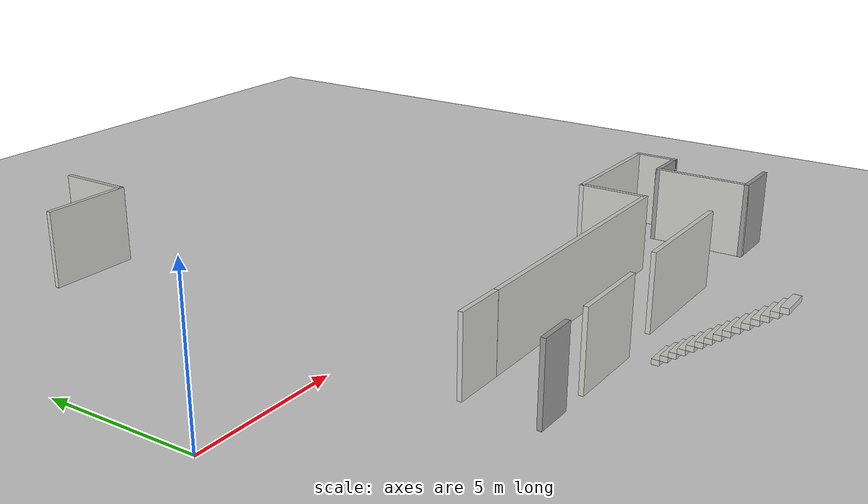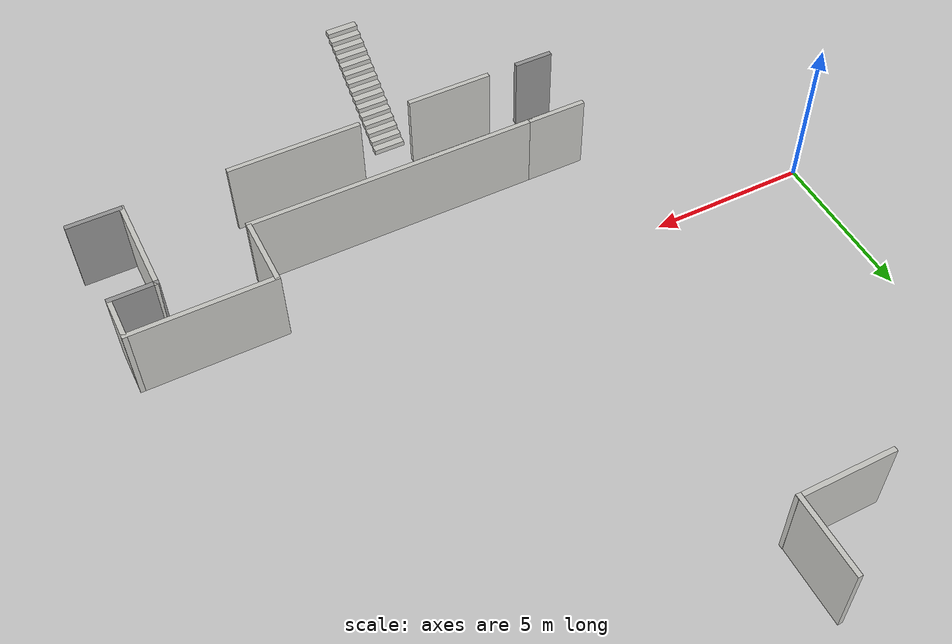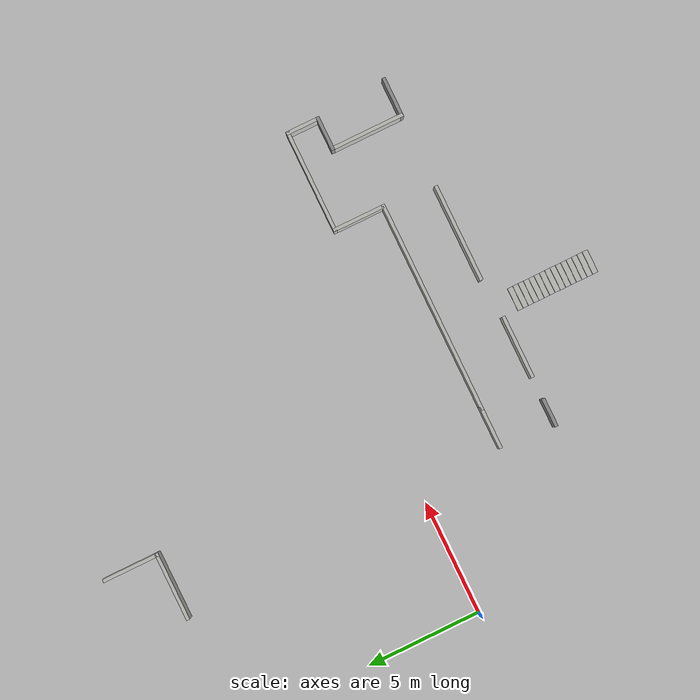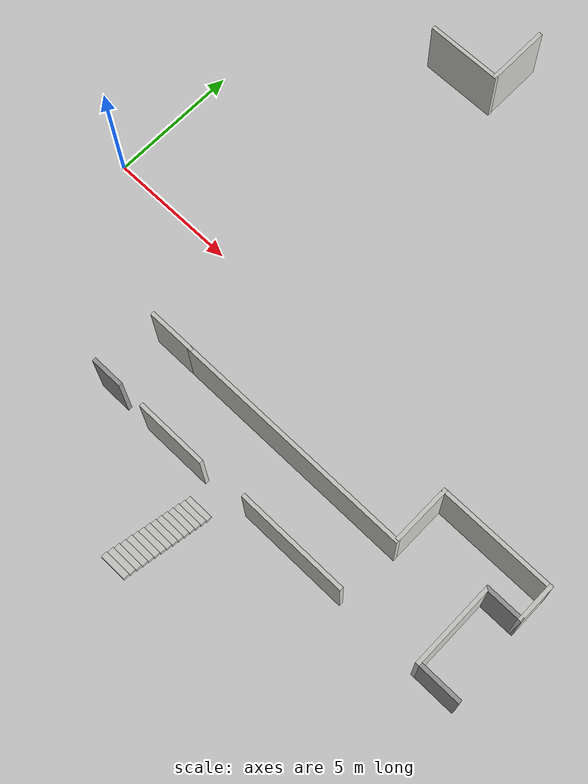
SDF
<sdf version="1.7">
 <world name="default">
  <model name="ground_plane">
   <static>1</static>
   <link name="link">
    <collision name="collision">
     <geometry><plane><normal>0 0 1</normal><size>100 100</size></plane></geometry>
     <surface>
      <contact><collide_bitmask>65535</collide_bitmask></contact>
      <friction><ode><mu>100</mu><mu2>50</mu2></ode></friction>
     </surface>
    </collision>
    <visual name="visual">
     <cast_shadows>0</cast_shadows>
     <geometry><plane><normal>0 0 1</normal><size>100 100</size></plane></geometry>
     <material>
      <script><uri>file://media/materials/scripts/gazebo.material</uri><name>Gazebo/Grey</name></script>
     </material>
    </visual>
   </link>
  </model>
  <model name="map_depo">
   <link name="Stairs_0">
    <visual name="Stairs_0_Visual_9">
     <pose>1.22447 -8.88721 1.58333 0 -0 0</pose>
     <geometry><box><size>1 0.233333 0.166667</size></box></geometry>
     <material>
      <script><uri>file://media/materials/scripts/gazebo.material</uri><name>Gazebo/CeilingTiled</name></script>
      <ambient>1 1 1 1</ambient>
      <shader type="pixel"/>
     </material>
     <meta><layer>0</layer></meta>
    </visual>
    <visual name="Stairs_0_Visual_12">
     <pose>1.22447 -9.58721 2.08333 0 -0 0</pose>
     <geometry><box><size>1 0.233333 0.166667</size></box></geometry>
     <material>
      <script><uri>file://media/materials/scripts/gazebo.material</uri><name>Gazebo/CeilingTiled</name></script>
      <ambient>1 1 1 1</ambient>
      <shader type="pixel"/>
     </material>
     <meta><layer>0</layer></meta>
    </visual>
    <visual name="Stairs_0_Visual_4">
     <pose>1.22447 -7.72054 0.75 0 -0 0</pose>
     <geometry><box><size>1 0.233333 0.166667</size></box></geometry>
     <material>
      <script><uri>file://media/materials/scripts/gazebo.material</uri><name>Gazebo/CeilingTiled</name></script>
      <ambient>1 1 1 1</ambient>
      <shader type="pixel"/>
     </material>
     <meta><layer>0</layer></meta>
    </visual>
    <visual name="Stairs_0_Visual_7">
     <pose>1.22447 -8.42054 1.25 0 -0 0</pose>
     <geometry><box><size>1 0.233333 0.166667</size></box></geometry>
     <material>
      <script><uri>file://media/materials/scripts/gazebo.material</uri><name>Gazebo/CeilingTiled</name></script>
      <ambient>1 1 1 1</ambient>
      <shader type="pixel"/>
     </material>
     <meta><layer>0</layer></meta>
    </visual>
    <visual name="Stairs_0_Visual_14">
     <pose>1.22447 -10.0539 2.41667 0 -0 0</pose>
     <geometry><box><size>1 0.233333 0.166667</size></box></geometry>
     <material>
      <script><uri>file://media/materials/scripts/gazebo.material</uri><name>Gazebo/CeilingTiled</name></script>
      <ambient>1 1 1 1</ambient>
      <shader type="pixel"/>
     </material>
     <meta><layer>0</layer></meta>
    </visual>
    <visual name="Stairs_0_Visual_0">
     <pose>1.22447 -6.78721 0.083333 0 -0 0</pose>
     <geometry><box><size>1 0.233333 0.166667</size></box></geometry>
     <material>
      <script><uri>file://media/materials/scripts/gazebo.material</uri><name>Gazebo/CeilingTiled</name></script>
      <ambient>1 1 1 1</ambient>
      <shader type="pixel"/>
     </material>
     <meta><layer>0</layer></meta>
    </visual>
    <visual name="Stairs_0_Visual_10">
     <pose>1.22447 -9.12054 1.75 0 -0 0</pose>
     <geometry><box><size>1 0.233333 0.166667</size></box></geometry>
     <material>
      <script><uri>file://media/materials/scripts/gazebo.material</uri><name>Gazebo/CeilingTiled</name></script>
      <ambient>1 1 1 1</ambient>
      <shader type="pixel"/>
     </material>
     <meta><layer>0</layer></meta>
    </visual>
    <visual name="Stairs_0_Visual_6">
     <pose>1.22447 -8.18721 1.08333 0 -0 0</pose>
     <geometry><box><size>1 0.233333 0.166667</size></box></geometry>
     <material>
      <script><uri>file://media/materials/scripts/gazebo.material</uri><name>Gazebo/CeilingTiled</name></script>
      <ambient>1 1 1 1</ambient>
      <shader type="pixel"/>
     </material>
     <meta><layer>0</layer></meta>
    </visual>
    <visual name="Stairs_0_Visual_5">
     <pose>1.22447 -7.95388 0.916667 0 -0 0</pose>
     <geometry><box><size>1 0.233333 0.166667</size></box></geometry>
     <material>
      <script><uri>file://media/materials/scripts/gazebo.material</uri><name>Gazebo/CeilingTiled</name></script>
      <ambient>1 1 1 1</ambient>
      <shader type="pixel"/>
     </material>
     <meta><layer>0</layer></meta>
    </visual>
    <visual name="Stairs_0_Visual_2">
     <pose>1.22447 -7.25387 0.416667 0 -0 0</pose>
     <geometry><box><size>1 0.233333 0.166667</size></box></geometry>
     <material>
      <script><uri>file://media/materials/scripts/gazebo.material</uri><name>Gazebo/CeilingTiled</name></script>
      <ambient>1 1 1 1</ambient>
      <shader type="pixel"/>
     </material>
     <meta><layer>0</layer></meta>
    </visual>
    <visual name="Stairs_0_Visual_8">
     <pose>1.22447 -8.65388 1.41667 0 -0 0</pose>
     <geometry><box><size>1 0.233333 0.166667</size></box></geometry>
     <material>
      <script><uri>file://media/materials/scripts/gazebo.material</uri><name>Gazebo/CeilingTiled</name></script>
      <ambient>1 1 1 1</ambient>
      <shader type="pixel"/>
     </material>
     <meta><layer>0</layer></meta>
    </visual>
    <visual name="Stairs_0_Visual_13">
     <pose>1.22447 -9.82054 2.25 0 -0 0</pose>
     <geometry><box><size>1 0.233333 0.166667</size></box></geometry>
     <material>
      <script><uri>file://media/materials/scripts/gazebo.material</uri><name>Gazebo/CeilingTiled</name></script>
      <ambient>1 1 1 1</ambient>
      <shader type="pixel"/>
     </material>
     <meta><layer>0</layer></meta>
    </visual>
    <visual name="Stairs_0_Visual_1">
     <pose>1.22447 -7.02054 0.25 0 -0 0</pose>
     <geometry><box><size>1 0.233333 0.166667</size></box></geometry>
     <material>
      <script><uri>file://media/materials/scripts/gazebo.material</uri><name>Gazebo/CeilingTiled</name></script>
      <ambient>1 1 1 1</ambient>
      <shader type="pixel"/>
     </material>
     <meta><layer>0</layer></meta>
    </visual>
    <visual name="Stairs_0_Visual_11">
     <pose>1.22447 -9.35388 1.91667 0 -0 0</pose>
     <geometry><box><size>1 0.233333 0.166667</size></box></geometry>
     <material>
      <script><uri>file://media/materials/scripts/gazebo.material</uri><name>Gazebo/CeilingTiled</name></script>
      <ambient>1 1 1 1</ambient>
      <shader type="pixel"/>
     </material>
     <meta><layer>0</layer></meta>
    </visual>
    <visual name="Stairs_0_Visual_3">
     <pose>1.22447 -7.48721 0.583333 0 -0 0</pose>
     <geometry><box><size>1 0.233333 0.166667</size></box></geometry>
     <material>
      <script><uri>file://media/materials/scripts/gazebo.material</uri><name>Gazebo/CeilingTiled</name></script>
      <ambient>1 1 1 1</ambient>
      <shader type="pixel"/>
     </material>
     <meta><layer>0</layer></meta>
    </visual>
    <collision name="Stairs_0_Collision_11">
     <pose>1.22447 -9.35388 1.91667 0 -0 0</pose>
     <geometry><box><size>1 0.233333 0.166667</size></box></geometry>
     <surface>
      <friction>
       <ode><mu>1</mu><mu2>1</mu2><fdir1>0 0 0</fdir1><slip1>0</slip1><slip2>0</slip2></ode>
       <torsional>
        <coefficient>1</coefficient>
        <patch_radius>0</patch_radius>
        <surface_radius>0</surface_radius>
        <use_patch_radius>1</use_patch_radius>
        <ode><slip>0</slip></ode>
       </torsional>
      </friction>
      <bounce><restitution_coefficient>0</restitution_coefficient><threshold>1e+06</threshold></bounce>
      <contact>
       <collide_without_contact>0</collide_without_contact>
       <collide_without_contact_bitmask>1</collide_without_contact_bitmask>
       <collide_bitmask>1</collide_bitmask>
       <ode>
        <soft_cfm>0</soft_cfm>
        <soft_erp>0.2</soft_erp>
        <kp>1e+13</kp>
        <kd>1</kd>
        <max_vel>0.01</max_vel>
        <min_depth>0</min_depth>
       </ode>
       <bullet>
        <split_impulse>1</split_impulse>
        <split_impulse_penetration_threshold>-0.01</split_impulse_penetration_threshold>
        <soft_cfm>0</soft_cfm>
        <soft_erp>0.2</soft_erp>
        <kp>1e+13</kp>
        <kd>1</kd>
       </bullet>
      </contact>
     </surface>
    </collision>
    <collision name="Stairs_0_Collision_0">
     <pose>1.22447 -6.78721 0.083333 0 -0 0</pose>
     <geometry><box><size>1 0.233333 0.166667</size></box></geometry>
     <surface>
      <friction>
       <ode><mu>1</mu><mu2>1</mu2><fdir1>0 0 0</fdir1><slip1>0</slip1><slip2>0</slip2></ode>
       <torsional>
        <coefficient>1</coefficient>
        <patch_radius>0</patch_radius>
        <surface_radius>0</surface_radius>
        <use_patch_radius>1</use_patch_radius>
        <ode><slip>0</slip></ode>
       </torsional>
      </friction>
      <bounce><restitution_coefficient>0</restitution_coefficient><threshold>1e+06</threshold></bounce>
      <contact>
       <collide_without_contact>0</collide_without_contact>
       <collide_without_contact_bitmask>1</collide_without_contact_bitmask>
       <collide_bitmask>1</collide_bitmask>
       <ode>
        <soft_cfm>0</soft_cfm>
        <soft_erp>0.2</soft_erp>
        <kp>1e+13</kp>
        <kd>1</kd>
        <max_vel>0.01</max_vel>
        <min_depth>0</min_depth>
       </ode>
       <bullet>
        <split_impulse>1</split_impulse>
        <split_impulse_penetration_threshold>-0.01</split_impulse_penetration_threshold>
        <soft_cfm>0</soft_cfm>
        <soft_erp>0.2</soft_erp>
        <kp>1e+13</kp>
        <kd>1</kd>
       </bullet>
      </contact>
     </surface>
    </collision>
    <collision name="Stairs_0_Collision_3">
     <pose>1.22447 -7.48721 0.583333 0 -0 0</pose>
     <geometry><box><size>1 0.233333 0.166667</size></box></geometry>
     <surface>
      <friction>
       <ode><mu>1</mu><mu2>1</mu2><fdir1>0 0 0</fdir1><slip1>0</slip1><slip2>0</slip2></ode>
       <torsional>
        <coefficient>1</coefficient>
        <patch_radius>0</patch_radius>
        <surface_radius>0</surface_radius>
        <use_patch_radius>1</use_patch_radius>
        <ode><slip>0</slip></ode>
       </torsional>
      </friction>
      <bounce><restitution_coefficient>0</restitution_coefficient><threshold>1e+06</threshold></bounce>
      <contact>
       <collide_without_contact>0</collide_without_contact>
       <collide_without_contact_bitmask>1</collide_without_contact_bitmask>
       <collide_bitmask>1</collide_bitmask>
       <ode>
        <soft_cfm>0</soft_cfm>
        <soft_erp>0.2</soft_erp>
        <kp>1e+13</kp>
        <kd>1</kd>
        <max_vel>0.01</max_vel>
        <min_depth>0</min_depth>
       </ode>
       <bullet>
        <split_impulse>1</split_impulse>
        <split_impulse_penetration_threshold>-0.01</split_impulse_penetration_threshold>
        <soft_cfm>0</soft_cfm>
        <soft_erp>0.2</soft_erp>
        <kp>1e+13</kp>
        <kd>1</kd>
       </bullet>
      </contact>
     </surface>
    </collision>
    <collision name="Stairs_0_Collision_9">
     <pose>1.22447 -8.88721 1.58333 0 -0 0</pose>
     <geometry><box><size>1 0.233333 0.166667</size></box></geometry>
     <surface>
      <friction>
       <ode><mu>1</mu><mu2>1</mu2><fdir1>0 0 0</fdir1><slip1>0</slip1><slip2>0</slip2></ode>
       <torsional>
        <coefficient>1</coefficient>
        <patch_radius>0</patch_radius>
        <surface_radius>0</surface_radius>
        <use_patch_radius>1</use_patch_radius>
        <ode><slip>0</slip></ode>
       </torsional>
      </friction>
      <bounce><restitution_coefficient>0</restitution_coefficient><threshold>1e+06</threshold></bounce>
      <contact>
       <collide_without_contact>0</collide_without_contact>
       <collide_without_contact_bitmask>1</collide_without_contact_bitmask>
       <collide_bitmask>1</collide_bitmask>
       <ode>
        <soft_cfm>0</soft_cfm>
        <soft_erp>0.2</soft_erp>
        <kp>1e+13</kp>
        <kd>1</kd>
        <max_vel>0.01</max_vel>
        <min_depth>0</min_depth>
       </ode>
       <bullet>
        <split_impulse>1</split_impulse>
        <split_impulse_penetration_threshold>-0.01</split_impulse_penetration_threshold>
        <soft_cfm>0</soft_cfm>
        <soft_erp>0.2</soft_erp>
        <kp>1e+13</kp>
        <kd>1</kd>
       </bullet>
      </contact>
     </surface>
    </collision>
    <collision name="Stairs_0_Collision_8">
     <pose>1.22447 -8.65388 1.41667 0 -0 0</pose>
     <geometry><box><size>1 0.233333 0.166667</size></box></geometry>
     <surface>
      <friction>
       <ode><mu>1</mu><mu2>1</mu2><fdir1>0 0 0</fdir1><slip1>0</slip1><slip2>0</slip2></ode>
       <torsional>
        <coefficient>1</coefficient>
        <patch_radius>0</patch_radius>
        <surface_radius>0</surface_radius>
        <use_patch_radius>1</use_patch_radius>
        <ode><slip>0</slip></ode>
       </torsional>
      </friction>
      <bounce><restitution_coefficient>0</restitution_coefficient><threshold>1e+06</threshold></bounce>
      <contact>
       <collide_without_contact>0</collide_without_contact>
       <collide_without_contact_bitmask>1</collide_without_contact_bitmask>
       <collide_bitmask>1</collide_bitmask>
       <ode>
        <soft_cfm>0</soft_cfm>
        <soft_erp>0.2</soft_erp>
        <kp>1e+13</kp>
        <kd>1</kd>
        <max_vel>0.01</max_vel>
        <min_depth>0</min_depth>
       </ode>
       <bullet>
        <split_impulse>1</split_impulse>
        <split_impulse_penetration_threshold>-0.01</split_impulse_penetration_threshold>
        <soft_cfm>0</soft_cfm>
        <soft_erp>0.2</soft_erp>
        <kp>1e+13</kp>
        <kd>1</kd>
       </bullet>
      </contact>
     </surface>
    </collision>
    <collision name="Stairs_0_Collision_6">
     <pose>1.22447 -8.18721 1.08333 0 -0 0</pose>
     <geometry><box><size>1 0.233333 0.166667</size></box></geometry>
     <surface>
      <friction>
       <ode><mu>1</mu><mu2>1</mu2><fdir1>0 0 0</fdir1><slip1>0</slip1><slip2>0</slip2></ode>
       <torsional>
        <coefficient>1</coefficient>
        <patch_radius>0</patch_radius>
        <surface_radius>0</surface_radius>
        <use_patch_radius>1</use_patch_radius>
        <ode><slip>0</slip></ode>
       </torsional>
      </friction>
      <bounce><restitution_coefficient>0</restitution_coefficient><threshold>1e+06</threshold></bounce>
      <contact>
       <collide_without_contact>0</collide_without_contact>
       <collide_without_contact_bitmask>1</collide_without_contact_bitmask>
       <collide_bitmask>1</collide_bitmask>
       <ode>
        <soft_cfm>0</soft_cfm>
        <soft_erp>0.2</soft_erp>
        <kp>1e+13</kp>
        <kd>1</kd>
        <max_vel>0.01</max_vel>
        <min_depth>0</min_depth>
       </ode>
       <bullet>
        <split_impulse>1</split_impulse>
        <split_impulse_penetration_threshold>-0.01</split_impulse_penetration_threshold>
        <soft_cfm>0</soft_cfm>
        <soft_erp>0.2</soft_erp>
        <kp>1e+13</kp>
        <kd>1</kd>
       </bullet>
      </contact>
     </surface>
    </collision>
    <collision name="Stairs_0_Collision_13">
     <pose>1.22447 -9.82054 2.25 0 -0 0</pose>
     <geometry><box><size>1 0.233333 0.166667</size></box></geometry>
     <surface>
      <friction>
       <ode><mu>1</mu><mu2>1</mu2><fdir1>0 0 0</fdir1><slip1>0</slip1><slip2>0</slip2></ode>
       <torsional>
        <coefficient>1</coefficient>
        <patch_radius>0</patch_radius>
        <surface_radius>0</surface_radius>
        <use_patch_radius>1</use_patch_radius>
        <ode><slip>0</slip></ode>
       </torsional>
      </friction>
      <bounce><restitution_coefficient>0</restitution_coefficient><threshold>1e+06</threshold></bounce>
      <contact>
       <collide_without_contact>0</collide_without_contact>
       <collide_without_contact_bitmask>1</collide_without_contact_bitmask>
       <collide_bitmask>1</collide_bitmask>
       <ode>
        <soft_cfm>0</soft_cfm>
        <soft_erp>0.2</soft_erp>
        <kp>1e+13</kp>
        <kd>1</kd>
        <max_vel>0.01</max_vel>
        <min_depth>0</min_depth>
       </ode>
       <bullet>
        <split_impulse>1</split_impulse>
        <split_impulse_penetration_threshold>-0.01</split_impulse_penetration_threshold>
        <soft_cfm>0</soft_cfm>
        <soft_erp>0.2</soft_erp>
        <kp>1e+13</kp>
        <kd>1</kd>
       </bullet>
      </contact>
     </surface>
    </collision>
    <collision name="Stairs_0_Collision_12">
     <pose>1.22447 -9.58721 2.08333 0 -0 0</pose>
     <geometry><box><size>1 0.233333 0.166667</size></box></geometry>
     <surface>
      <friction>
       <ode><mu>1</mu><mu2>1</mu2><fdir1>0 0 0</fdir1><slip1>0</slip1><slip2>0</slip2></ode>
       <torsional>
        <coefficient>1</coefficient>
        <patch_radius>0</patch_radius>
        <surface_radius>0</surface_radius>
        <use_patch_radius>1</use_patch_radius>
        <ode><slip>0</slip></ode>
       </torsional>
      </friction>
      <bounce><restitution_coefficient>0</restitution_coefficient><threshold>1e+06</threshold></bounce>
      <contact>
       <collide_without_contact>0</collide_without_contact>
       <collide_without_contact_bitmask>1</collide_without_contact_bitmask>
       <collide_bitmask>1</collide_bitmask>
       <ode>
        <soft_cfm>0</soft_cfm>
        <soft_erp>0.2</soft_erp>
        <kp>1e+13</kp>
        <kd>1</kd>
        <max_vel>0.01</max_vel>
        <min_depth>0</min_depth>
       </ode>
       <bullet>
        <split_impulse>1</split_impulse>
        <split_impulse_penetration_threshold>-0.01</split_impulse_penetration_threshold>
        <soft_cfm>0</soft_cfm>
        <soft_erp>0.2</soft_erp>
        <kp>1e+13</kp>
        <kd>1</kd>
       </bullet>
      </contact>
     </surface>
    </collision>
    <collision name="Stairs_0_Collision_4">
     <pose>1.22447 -7.72054 0.75 0 -0 0</pose>
     <geometry><box><size>1 0.233333 0.166667</size></box></geometry>
     <surface>
      <friction>
       <ode><mu>1</mu><mu2>1</mu2><fdir1>0 0 0</fdir1><slip1>0</slip1><slip2>0</slip2></ode>
       <torsional>
        <coefficient>1</coefficient>
        <patch_radius>0</patch_radius>
        <surface_radius>0</surface_radius>
        <use_patch_radius>1</use_patch_radius>
        <ode><slip>0</slip></ode>
       </torsional>
      </friction>
      <bounce><restitution_coefficient>0</restitution_coefficient><threshold>1e+06</threshold></bounce>
      <contact>
       <collide_without_contact>0</collide_without_contact>
       <collide_without_contact_bitmask>1</collide_without_contact_bitmask>
       <collide_bitmask>1</collide_bitmask>
       <ode>
        <soft_cfm>0</soft_cfm>
        <soft_erp>0.2</soft_erp>
        <kp>1e+13</kp>
        <kd>1</kd>
        <max_vel>0.01</max_vel>
        <min_depth>0</min_depth>
       </ode>
       <bullet>
        <split_impulse>1</split_impulse>
        <split_impulse_penetration_threshold>-0.01</split_impulse_penetration_threshold>
        <soft_cfm>0</soft_cfm>
        <soft_erp>0.2</soft_erp>
        <kp>1e+13</kp>
        <kd>1</kd>
       </bullet>
      </contact>
     </surface>
    </collision>
    <collision name="Stairs_0_Collision_7">
     <pose>1.22447 -8.42054 1.25 0 -0 0</pose>
     <geometry><box><size>1 0.233333 0.166667</size></box></geometry>
     <surface>
      <friction>
       <ode><mu>1</mu><mu2>1</mu2><fdir1>0 0 0</fdir1><slip1>0</slip1><slip2>0</slip2></ode>
       <torsional>
        <coefficient>1</coefficient>
        <patch_radius>0</patch_radius>
        <surface_radius>0</surface_radius>
        <use_patch_radius>1</use_patch_radius>
        <ode><slip>0</slip></ode>
       </torsional>
      </friction>
      <bounce><restitution_coefficient>0</restitution_coefficient><threshold>1e+06</threshold></bounce>
      <contact>
       <collide_without_contact>0</collide_without_contact>
       <collide_without_contact_bitmask>1</collide_without_contact_bitmask>
       <collide_bitmask>1</collide_bitmask>
       <ode>
        <soft_cfm>0</soft_cfm>
        <soft_erp>0.2</soft_erp>
        <kp>1e+13</kp>
        <kd>1</kd>
        <max_vel>0.01</max_vel>
        <min_depth>0</min_depth>
       </ode>
       <bullet>
        <split_impulse>1</split_impulse>
        <split_impulse_penetration_threshold>-0.01</split_impulse_penetration_threshold>
        <soft_cfm>0</soft_cfm>
        <soft_erp>0.2</soft_erp>
        <kp>1e+13</kp>
        <kd>1</kd>
       </bullet>
      </contact>
     </surface>
    </collision>
    <collision name="Stairs_0_Collision_5">
     <pose>1.22447 -7.95388 0.916667 0 -0 0</pose>
     <geometry><box><size>1 0.233333 0.166667</size></box></geometry>
     <surface>
      <friction>
       <ode><mu>1</mu><mu2>1</mu2><fdir1>0 0 0</fdir1><slip1>0</slip1><slip2>0</slip2></ode>
       <torsional>
        <coefficient>1</coefficient>
        <patch_radius>0</patch_radius>
        <surface_radius>0</surface_radius>
        <use_patch_radius>1</use_patch_radius>
        <ode><slip>0</slip></ode>
       </torsional>
      </friction>
      <bounce><restitution_coefficient>0</restitution_coefficient><threshold>1e+06</threshold></bounce>
      <contact>
       <collide_without_contact>0</collide_without_contact>
       <collide_without_contact_bitmask>1</collide_without_contact_bitmask>
       <collide_bitmask>1</collide_bitmask>
       <ode>
        <soft_cfm>0</soft_cfm>
        <soft_erp>0.2</soft_erp>
        <kp>1e+13</kp>
        <kd>1</kd>
        <max_vel>0.01</max_vel>
        <min_depth>0</min_depth>
       </ode>
       <bullet>
        <split_impulse>1</split_impulse>
        <split_impulse_penetration_threshold>-0.01</split_impulse_penetration_threshold>
        <soft_cfm>0</soft_cfm>
        <soft_erp>0.2</soft_erp>
        <kp>1e+13</kp>
        <kd>1</kd>
       </bullet>
      </contact>
     </surface>
    </collision>
    <collision name="Stairs_0_Collision_10">
     <pose>1.22447 -9.12054 1.75 0 -0 0</pose>
     <geometry><box><size>1 0.233333 0.166667</size></box></geometry>
     <surface>
      <friction>
       <ode><mu>1</mu><mu2>1</mu2><fdir1>0 0 0</fdir1><slip1>0</slip1><slip2>0</slip2></ode>
       <torsional>
        <coefficient>1</coefficient>
        <patch_radius>0</patch_radius>
        <surface_radius>0</surface_radius>
        <use_patch_radius>1</use_patch_radius>
        <ode><slip>0</slip></ode>
       </torsional>
      </friction>
      <bounce><restitution_coefficient>0</restitution_coefficient><threshold>1e+06</threshold></bounce>
      <contact>
       <collide_without_contact>0</collide_without_contact>
       <collide_without_contact_bitmask>1</collide_without_contact_bitmask>
       <collide_bitmask>1</collide_bitmask>
       <ode>
        <soft_cfm>0</soft_cfm>
        <soft_erp>0.2</soft_erp>
        <kp>1e+13</kp>
        <kd>1</kd>
        <max_vel>0.01</max_vel>
        <min_depth>0</min_depth>
       </ode>
       <bullet>
        <split_impulse>1</split_impulse>
        <split_impulse_penetration_threshold>-0.01</split_impulse_penetration_threshold>
        <soft_cfm>0</soft_cfm>
        <soft_erp>0.2</soft_erp>
        <kp>1e+13</kp>
        <kd>1</kd>
       </bullet>
      </contact>
     </surface>
    </collision>
    <collision name="Stairs_0_Collision_2">
     <pose>1.22447 -7.25387 0.416667 0 -0 0</pose>
     <geometry><box><size>1 0.233333 0.166667</size></box></geometry>
     <surface>
      <friction>
       <ode><mu>1</mu><mu2>1</mu2><fdir1>0 0 0</fdir1><slip1>0</slip1><slip2>0</slip2></ode>
       <torsional>
        <coefficient>1</coefficient>
        <patch_radius>0</patch_radius>
        <surface_radius>0</surface_radius>
        <use_patch_radius>1</use_patch_radius>
        <ode><slip>0</slip></ode>
       </torsional>
      </friction>
      <bounce><restitution_coefficient>0</restitution_coefficient><threshold>1e+06</threshold></bounce>
      <contact>
       <collide_without_contact>0</collide_without_contact>
       <collide_without_contact_bitmask>1</collide_without_contact_bitmask>
       <collide_bitmask>1</collide_bitmask>
       <ode>
        <soft_cfm>0</soft_cfm>
        <soft_erp>0.2</soft_erp>
        <kp>1e+13</kp>
        <kd>1</kd>
        <max_vel>0.01</max_vel>
        <min_depth>0</min_depth>
       </ode>
       <bullet>
        <split_impulse>1</split_impulse>
        <split_impulse_penetration_threshold>-0.01</split_impulse_penetration_threshold>
        <soft_cfm>0</soft_cfm>
        <soft_erp>0.2</soft_erp>
        <kp>1e+13</kp>
        <kd>1</kd>
       </bullet>
      </contact>
     </surface>
    </collision>
    <collision name="Stairs_0_Collision_14">
     <pose>1.22447 -10.0539 2.41667 0 -0 0</pose>
     <geometry><box><size>1 0.233333 0.166667</size></box></geometry>
     <surface>
      <friction>
       <ode><mu>1</mu><mu2>1</mu2><fdir1>0 0 0</fdir1><slip1>0</slip1><slip2>0</slip2></ode>
       <torsional>
        <coefficient>1</coefficient>
        <patch_radius>0</patch_radius>
        <surface_radius>0</surface_radius>
        <use_patch_radius>1</use_patch_radius>
        <ode><slip>0</slip></ode>
       </torsional>
      </friction>
      <bounce><restitution_coefficient>0</restitution_coefficient><threshold>1e+06</threshold></bounce>
      <contact>
       <collide_without_contact>0</collide_without_contact>
       <collide_without_contact_bitmask>1</collide_without_contact_bitmask>
       <collide_bitmask>1</collide_bitmask>
       <ode>
        <soft_cfm>0</soft_cfm>
        <soft_erp>0.2</soft_erp>
        <kp>1e+13</kp>
        <kd>1</kd>
        <max_vel>0.01</max_vel>
        <min_depth>0</min_depth>
       </ode>
       <bullet>
        <split_impulse>1</split_impulse>
        <split_impulse_penetration_threshold>-0.01</split_impulse_penetration_threshold>
        <soft_cfm>0</soft_cfm>
        <soft_erp>0.2</soft_erp>
        <kp>1e+13</kp>
        <kd>1</kd>
       </bullet>
      </contact>
     </surface>
    </collision>
    <collision name="Stairs_0_Collision_1">
     <pose>1.22447 -7.02054 0.25 0 -0 0</pose>
     <geometry><box><size>1 0.233333 0.166667</size></box></geometry>
     <surface>
      <friction>
       <ode><mu>1</mu><mu2>1</mu2><fdir1>0 0 0</fdir1><slip1>0</slip1><slip2>0</slip2></ode>
       <torsional>
        <coefficient>1</coefficient>
        <patch_radius>0</patch_radius>
        <surface_radius>0</surface_radius>
        <use_patch_radius>1</use_patch_radius>
        <ode><slip>0</slip></ode>
       </torsional>
      </friction>
      <bounce><restitution_coefficient>0</restitution_coefficient><threshold>1e+06</threshold></bounce>
      <contact>
       <collide_without_contact>0</collide_without_contact>
       <collide_without_contact_bitmask>1</collide_without_contact_bitmask>
       <collide_bitmask>1</collide_bitmask>
       <ode>
        <soft_cfm>0</soft_cfm>
        <soft_erp>0.2</soft_erp>
        <kp>1e+13</kp>
        <kd>1</kd>
        <max_vel>0.01</max_vel>
        <min_depth>0</min_depth>
       </ode>
       <bullet>
        <split_impulse>1</split_impulse>
        <split_impulse_penetration_threshold>-0.01</split_impulse_penetration_threshold>
        <soft_cfm>0</soft_cfm>
        <soft_erp>0.2</soft_erp>
        <kp>1e+13</kp>
        <kd>1</kd>
       </bullet>
      </contact>
     </surface>
    </collision>
   </link>
   <link name="Wall_102">
    <pose>-3.05165 -3.52199 0 0 -0 3.14071</pose>
    <inertial>
     <mass>1</mass>
     <inertia><ixx>1</ixx><ixy>0</ixy><ixz>0</ixz><iyy>1</iyy><iyz>0</iyz><izz>1</izz></inertia>
    </inertial>
    <visual name="Wall_102_Visual">
     <pose>0 0 1.25 0 -0 0</pose>
     <geometry><box><size>1.87377 0.15 2.5</size></box></geometry>
     <material>
      <script><uri>file://media/materials/scripts/gazebo.material</uri><name>Gazebo/CeilingTiled</name></script>
      <ambient>1 1 1 1</ambient>
      <shader type="pixel"><normal_map>__default__</normal_map></shader>
      <diffuse>1 1 1 1</diffuse>
      <specular>0 0 0 1</specular>
      <emissive>0 0 0 1</emissive>
     </material>
     <meta><layer>0</layer></meta>
    </visual>
    <collision name="Wall_102_Collision">
     <pose>0 0 1.25 0 -0 0</pose>
     <geometry><box><size>1.87377 0.15 2.5</size></box></geometry>
     <surface>
      <friction>
       <ode><mu>1</mu><mu2>1</mu2><fdir1>0 0 0</fdir1><slip1>0</slip1><slip2>0</slip2></ode>
       <torsional>
        <coefficient>1</coefficient>
        <patch_radius>0</patch_radius>
        <surface_radius>0</surface_radius>
        <use_patch_radius>1</use_patch_radius>
        <ode><slip>0</slip></ode>
       </torsional>
      </friction>
      <bounce><restitution_coefficient>0</restitution_coefficient><threshold>1e+06</threshold></bounce>
      <contact>
       <collide_without_contact>0</collide_without_contact>
       <collide_without_contact_bitmask>1</collide_without_contact_bitmask>
       <collide_bitmask>1</collide_bitmask>
       <ode>
        <soft_cfm>0</soft_cfm>
        <soft_erp>0.2</soft_erp>
        <kp>1e+13</kp>
        <kd>1</kd>
        <max_vel>0.01</max_vel>
        <min_depth>0</min_depth>
       </ode>
       <bullet>
        <split_impulse>1</split_impulse>
        <split_impulse_penetration_threshold>-0.01</split_impulse_penetration_threshold>
        <soft_cfm>0</soft_cfm>
        <soft_erp>0.2</soft_erp>
        <kp>1e+13</kp>
        <kd>1</kd>
       </bullet>
      </contact>
     </surface>
    </collision>
   </link>
   <link name="Wall_13">
    <pose>-1.7996 12.06 0 0 0 -1.5708</pose>
    <visual name="Wall_13_Visual">
     <pose>0 0 1.25 0 -0 0</pose>
     <geometry><box><size>2.5 0.15 2.5</size></box></geometry>
     <material>
      <script><uri>file://media/materials/scripts/gazebo.material</uri><name>Gazebo/CeilingTiled</name></script>
      <ambient>1 1 1 1</ambient>
      <shader type="pixel"/>
     </material>
     <meta><layer>0</layer></meta>
    </visual>
    <collision name="Wall_13_Collision">
     <pose>0 0 1.25 0 -0 0</pose>
     <geometry><box><size>2.5 0.15 2.5</size></box></geometry>
     <surface>
      <friction>
       <ode><mu>1</mu><mu2>1</mu2><fdir1>0 0 0</fdir1><slip1>0</slip1><slip2>0</slip2></ode>
       <torsional>
        <coefficient>1</coefficient>
        <patch_radius>0</patch_radius>
        <surface_radius>0</surface_radius>
        <use_patch_radius>1</use_patch_radius>
        <ode><slip>0</slip></ode>
       </torsional>
      </friction>
      <bounce><restitution_coefficient>0</restitution_coefficient><threshold>1e+06</threshold></bounce>
      <contact>
       <collide_without_contact>0</collide_without_contact>
       <collide_without_contact_bitmask>1</collide_without_contact_bitmask>
       <collide_bitmask>1</collide_bitmask>
       <ode>
        <soft_cfm>0</soft_cfm>
        <soft_erp>0.2</soft_erp>
        <kp>1e+13</kp>
        <kd>1</kd>
        <max_vel>0.01</max_vel>
        <min_depth>0</min_depth>
       </ode>
       <bullet>
        <split_impulse>1</split_impulse>
        <split_impulse_penetration_threshold>-0.01</split_impulse_penetration_threshold>
        <soft_cfm>0</soft_cfm>
        <soft_erp>0.2</soft_erp>
        <kp>1e+13</kp>
        <kd>1</kd>
       </bullet>
      </contact>
     </surface>
    </collision>
   </link>
   <link name="Wall_14">
    <pose>-3.21429 10.885 0 0 -0 3.14159</pose>
    <visual name="Wall_14_Visual">
     <pose>0 0 1.25 0 -0 0</pose>
     <geometry><box><size>3 0.15 2.5</size></box></geometry>
     <material>
      <script><uri>file://media/materials/scripts/gazebo.material</uri><name>Gazebo/CeilingTiled</name></script>
      <ambient>1 1 1 1</ambient>
      <shader type="pixel"/>
     </material>
     <meta><layer>0</layer></meta>
    </visual>
    <collision name="Wall_14_Collision">
     <pose>0 0 1.25 0 -0 0</pose>
     <geometry><box><size>3 0.15 2.5</size></box></geometry>
     <surface>
      <friction>
       <ode><mu>1</mu><mu2>1</mu2><fdir1>0 0 0</fdir1><slip1>0</slip1><slip2>0</slip2></ode>
       <torsional>
        <coefficient>1</coefficient>
        <patch_radius>0</patch_radius>
        <surface_radius>0</surface_radius>
        <use_patch_radius>1</use_patch_radius>
        <ode><slip>0</slip></ode>
       </torsional>
      </friction>
      <bounce><restitution_coefficient>0</restitution_coefficient><threshold>1e+06</threshold></bounce>
      <contact>
       <collide_without_contact>0</collide_without_contact>
       <collide_without_contact_bitmask>1</collide_without_contact_bitmask>
       <collide_bitmask>1</collide_bitmask>
       <ode>
        <soft_cfm>0</soft_cfm>
        <soft_erp>0.2</soft_erp>
        <kp>1e+13</kp>
        <kd>1</kd>
        <max_vel>0.01</max_vel>
        <min_depth>0</min_depth>
       </ode>
       <bullet>
        <split_impulse>1</split_impulse>
        <split_impulse_penetration_threshold>-0.01</split_impulse_penetration_threshold>
        <soft_cfm>0</soft_cfm>
        <soft_erp>0.2</soft_erp>
        <kp>1e+13</kp>
        <kd>1</kd>
       </bullet>
      </contact>
     </surface>
    </collision>
   </link>
   <link name="Wall_78">
    <pose>-3.55009 -5.93497 0 0 -0 0</pose>
    <visual name="Wall_78_Visual">
     <pose>0 0 1.25 0 -0 0</pose>
     <geometry><box><size>1.25 0.15 2.5</size></box></geometry>
     <material>
      <script><uri>file://media/materials/scripts/gazebo.material</uri><name>Gazebo/Grey</name></script>
      <ambient>1 1 1 1</ambient>
      <shader type="pixel"/>
     </material>
     <meta><layer>0</layer></meta>
    </visual>
    <collision name="Wall_78_Collision">
     <pose>0 0 1.25 0 -0 0</pose>
     <geometry><box><size>1.25 0.15 2.5</size></box></geometry>
     <surface>
      <friction>
       <ode><mu>1</mu><mu2>1</mu2><fdir1>0 0 0</fdir1><slip1>0</slip1><slip2>0</slip2></ode>
       <torsional>
        <coefficient>1</coefficient>
        <patch_radius>0</patch_radius>
        <surface_radius>0</surface_radius>
        <use_patch_radius>1</use_patch_radius>
        <ode><slip>0</slip></ode>
       </torsional>
      </friction>
      <bounce><restitution_coefficient>0</restitution_coefficient><threshold>1e+06</threshold></bounce>
      <contact>
       <collide_without_contact>0</collide_without_contact>
       <collide_without_contact_bitmask>1</collide_without_contact_bitmask>
       <collide_bitmask>1</collide_bitmask>
       <ode>
        <soft_cfm>0</soft_cfm>
        <soft_erp>0.2</soft_erp>
        <kp>1e+13</kp>
        <kd>1</kd>
        <max_vel>0.01</max_vel>
        <min_depth>0</min_depth>
       </ode>
       <bullet>
        <split_impulse>1</split_impulse>
        <split_impulse_penetration_threshold>-0.01</split_impulse_penetration_threshold>
        <soft_cfm>0</soft_cfm>
        <soft_erp>0.2</soft_erp>
        <kp>1e+13</kp>
        <kd>1</kd>
       </bullet>
      </contact>
     </surface>
    </collision>
   </link>
   <link name="Wall_82">
    <pose>-0.600086 -5.93497 0 0 -0 0</pose>
    <visual name="Wall_82_Visual">
     <pose>0 0 1.25 0 -0 0</pose>
     <geometry><box><size>2.75 0.15 2.5</size></box></geometry>
     <material>
      <script><uri>file://media/materials/scripts/gazebo.material</uri><name>Gazebo/CeilingTiled</name></script>
      <ambient>1 1 1 1</ambient>
      <shader type="pixel"/>
     </material>
     <meta><layer>0</layer></meta>
    </visual>
    <collision name="Wall_82_Collision">
     <pose>0 0 1.25 0 -0 0</pose>
     <geometry><box><size>2.75 0.15 2.5</size></box></geometry>
     <surface>
      <friction>
       <ode><mu>1</mu><mu2>1</mu2><fdir1>0 0 0</fdir1><slip1>0</slip1><slip2>0</slip2></ode>
       <torsional>
        <coefficient>1</coefficient>
        <patch_radius>0</patch_radius>
        <surface_radius>0</surface_radius>
        <use_patch_radius>1</use_patch_radius>
        <ode><slip>0</slip></ode>
       </torsional>
      </friction>
      <bounce><restitution_coefficient>0</restitution_coefficient><threshold>1e+06</threshold></bounce>
      <contact>
       <collide_without_contact>0</collide_without_contact>
       <collide_without_contact_bitmask>1</collide_without_contact_bitmask>
       <collide_bitmask>1</collide_bitmask>
       <ode>
        <soft_cfm>0</soft_cfm>
        <soft_erp>0.2</soft_erp>
        <kp>1e+13</kp>
        <kd>1</kd>
        <max_vel>0.01</max_vel>
        <min_depth>0</min_depth>
       </ode>
       <bullet>
        <split_impulse>1</split_impulse>
        <split_impulse_penetration_threshold>-0.01</split_impulse_penetration_threshold>
        <soft_cfm>0</soft_cfm>
        <soft_erp>0.2</soft_erp>
        <kp>1e+13</kp>
        <kd>1</kd>
       </bullet>
      </contact>
     </surface>
    </collision>
   </link>
   <link name="Wall_88">
    <pose>4.59991 -5.78497 0 0 -0 0</pose>
    <visual name="Wall_88_Visual">
     <pose>0 0 1.25 0 -0 0</pose>
     <geometry><box><size>4.25 0.15 2.5</size></box></geometry>
     <material>
      <script><uri>file://media/materials/scripts/gazebo.material</uri><name>Gazebo/CeilingTiled</name></script>
      <ambient>1 1 1 1</ambient>
      <shader type="pixel"/>
     </material>
     <meta><layer>0</layer></meta>
    </visual>
    <collision name="Wall_88_Collision">
     <pose>0 0 1.25 0 -0 0</pose>
     <geometry><box><size>4.25 0.15 2.5</size></box></geometry>
     <surface>
      <friction>
       <ode><mu>1</mu><mu2>1</mu2><fdir1>0 0 0</fdir1><slip1>0</slip1><slip2>0</slip2></ode>
       <torsional>
        <coefficient>1</coefficient>
        <patch_radius>0</patch_radius>
        <surface_radius>0</surface_radius>
        <use_patch_radius>1</use_patch_radius>
        <ode><slip>0</slip></ode>
       </torsional>
      </friction>
      <bounce><restitution_coefficient>0</restitution_coefficient><threshold>1e+06</threshold></bounce>
      <contact>
       <collide_without_contact>0</collide_without_contact>
       <collide_without_contact_bitmask>1</collide_without_contact_bitmask>
       <collide_bitmask>1</collide_bitmask>
       <ode>
        <soft_cfm>0</soft_cfm>
        <soft_erp>0.2</soft_erp>
        <kp>1e+13</kp>
        <kd>1</kd>
        <max_vel>0.01</max_vel>
        <min_depth>0</min_depth>
       </ode>
       <bullet>
        <split_impulse>1</split_impulse>
        <split_impulse_penetration_threshold>-0.01</split_impulse_penetration_threshold>
        <soft_cfm>0</soft_cfm>
        <soft_erp>0.2</soft_erp>
        <kp>1e+13</kp>
        <kd>1</kd>
       </bullet>
      </contact>
     </surface>
    </collision>
   </link>
   <link name="Wall_92">
    <pose>10.6999 -5.78497 0 0 -0 3.14159</pose>
    <visual name="Wall_92_Visual">
     <pose>0 0 1.25 0 -0 0</pose>
     <geometry><box><size>1.75 0.15 2.5</size></box></geometry>
     <material>
      <script><uri>file://media/materials/scripts/gazebo.material</uri><name>Gazebo/Grey</name></script>
      <ambient>1 1 1 1</ambient>
      <shader type="pixel"/>
     </material>
     <meta><layer>0</layer></meta>
    </visual>
    <collision name="Wall_92_Collision">
     <pose>0 0 1.25 0 -0 0</pose>
     <geometry><box><size>1.75 0.15 2.5</size></box></geometry>
     <surface>
      <friction>
       <ode><mu>1</mu><mu2>1</mu2><fdir1>0 0 0</fdir1><slip1>0</slip1><slip2>0</slip2></ode>
       <torsional>
        <coefficient>1</coefficient>
        <patch_radius>0</patch_radius>
        <surface_radius>0</surface_radius>
        <use_patch_radius>1</use_patch_radius>
        <ode><slip>0</slip></ode>
       </torsional>
      </friction>
      <bounce><restitution_coefficient>0</restitution_coefficient><threshold>1e+06</threshold></bounce>
      <contact>
       <collide_without_contact>0</collide_without_contact>
       <collide_without_contact_bitmask>1</collide_without_contact_bitmask>
       <collide_bitmask>1</collide_bitmask>
       <ode>
        <soft_cfm>0</soft_cfm>
        <soft_erp>0.2</soft_erp>
        <kp>1e+13</kp>
        <kd>1</kd>
        <max_vel>0.01</max_vel>
        <min_depth>0</min_depth>
       </ode>
       <bullet>
        <split_impulse>1</split_impulse>
        <split_impulse_penetration_threshold>-0.01</split_impulse_penetration_threshold>
        <soft_cfm>0</soft_cfm>
        <soft_erp>0.2</soft_erp>
        <kp>1e+13</kp>
        <kd>1</kd>
       </bullet>
      </contact>
     </surface>
    </collision>
   </link>
   <link name="Wall_93">
    <pose>9.89991 -4.23497 0 0 -0 1.5708</pose>
    <visual name="Wall_93_Visual">
     <pose>0 0 1.25 0 -0 0</pose>
     <geometry><box><size>3.25 0.15 2.5</size></box></geometry>
     <material>
      <script><uri>file://media/materials/scripts/gazebo.material</uri><name>Gazebo/CeilingTiled</name></script>
      <ambient>1 1 1 1</ambient>
      <shader type="pixel"/>
     </material>
     <meta><layer>0</layer></meta>
    </visual>
    <collision name="Wall_93_Collision">
     <pose>0 0 1.25 0 -0 0</pose>
     <geometry><box><size>3.25 0.15 2.5</size></box></geometry>
     <surface>
      <friction>
       <ode><mu>1</mu><mu2>1</mu2><fdir1>0 0 0</fdir1><slip1>0</slip1><slip2>0</slip2></ode>
       <torsional>
        <coefficient>1</coefficient>
        <patch_radius>0</patch_radius>
        <surface_radius>0</surface_radius>
        <use_patch_radius>1</use_patch_radius>
        <ode><slip>0</slip></ode>
       </torsional>
      </friction>
      <bounce><restitution_coefficient>0</restitution_coefficient><threshold>1e+06</threshold></bounce>
      <contact>
       <collide_without_contact>0</collide_without_contact>
       <collide_without_contact_bitmask>1</collide_without_contact_bitmask>
       <collide_bitmask>1</collide_bitmask>
       <ode>
        <soft_cfm>0</soft_cfm>
        <soft_erp>0.2</soft_erp>
        <kp>1e+13</kp>
        <kd>1</kd>
        <max_vel>0.01</max_vel>
        <min_depth>0</min_depth>
       </ode>
       <bullet>
        <split_impulse>1</split_impulse>
        <split_impulse_penetration_threshold>-0.01</split_impulse_penetration_threshold>
        <soft_cfm>0</soft_cfm>
        <soft_erp>0.2</soft_erp>
        <kp>1e+13</kp>
        <kd>1</kd>
       </bullet>
      </contact>
     </surface>
    </collision>
   </link>
   <link name="Wall_94">
    <pose>10.5749 -2.68497 0 0 -0 0</pose>
    <visual name="Wall_94_Visual">
     <pose>0 0 1.25 0 -0 0</pose>
     <geometry><box><size>1.5 0.15 2.5</size></box></geometry>
     <material>
      <script><uri>file://media/materials/scripts/gazebo.material</uri><name>Gazebo/Grey</name></script>
      <ambient>1 1 1 1</ambient>
      <shader type="pixel"/>
     </material>
     <meta><layer>0</layer></meta>
    </visual>
    <collision name="Wall_94_Collision">
     <pose>0 0 1.25 0 -0 0</pose>
     <geometry><box><size>1.5 0.15 2.5</size></box></geometry>
     <surface>
      <friction>
       <ode><mu>1</mu><mu2>1</mu2><fdir1>0 0 0</fdir1><slip1>0</slip1><slip2>0</slip2></ode>
       <torsional>
        <coefficient>1</coefficient>
        <patch_radius>0</patch_radius>
        <surface_radius>0</surface_radius>
        <use_patch_radius>1</use_patch_radius>
        <ode><slip>0</slip></ode>
       </torsional>
      </friction>
      <bounce><restitution_coefficient>0</restitution_coefficient><threshold>1e+06</threshold></bounce>
      <contact>
       <collide_without_contact>0</collide_without_contact>
       <collide_without_contact_bitmask>1</collide_without_contact_bitmask>
       <collide_bitmask>1</collide_bitmask>
       <ode>
        <soft_cfm>0</soft_cfm>
        <soft_erp>0.2</soft_erp>
        <kp>1e+13</kp>
        <kd>1</kd>
        <max_vel>0.01</max_vel>
        <min_depth>0</min_depth>
       </ode>
       <bullet>
        <split_impulse>1</split_impulse>
        <split_impulse_penetration_threshold>-0.01</split_impulse_penetration_threshold>
        <soft_cfm>0</soft_cfm>
        <soft_erp>0.2</soft_erp>
        <kp>1e+13</kp>
        <kd>1</kd>
       </bullet>
      </contact>
     </surface>
    </collision>
   </link>
   <link name="Wall_95">
    <pose>11.2499 -2.00997 0 0 -0 1.5708</pose>
    <visual name="Wall_95_Visual">
     <pose>0 0 1.25 0 -0 0</pose>
     <geometry><box><size>1.5 0.15 2.5</size></box></geometry>
     <material>
      <script><uri>file://media/materials/scripts/gazebo.material</uri><name>Gazebo/CeilingTiled</name></script>
      <ambient>1 1 1 1</ambient>
      <shader type="pixel"/>
     </material>
     <meta><layer>0</layer></meta>
    </visual>
    <collision name="Wall_95_Collision">
     <pose>0 0 1.25 0 -0 0</pose>
     <geometry><box><size>1.5 0.15 2.5</size></box></geometry>
     <surface>
      <friction>
       <ode><mu>1</mu><mu2>1</mu2><fdir1>0 0 0</fdir1><slip1>0</slip1><slip2>0</slip2></ode>
       <torsional>
        <coefficient>1</coefficient>
        <patch_radius>0</patch_radius>
        <surface_radius>0</surface_radius>
        <use_patch_radius>1</use_patch_radius>
        <ode><slip>0</slip></ode>
       </torsional>
      </friction>
      <bounce><restitution_coefficient>0</restitution_coefficient><threshold>1e+06</threshold></bounce>
      <contact>
       <collide_without_contact>0</collide_without_contact>
       <collide_without_contact_bitmask>1</collide_without_contact_bitmask>
       <collide_bitmask>1</collide_bitmask>
       <ode>
        <soft_cfm>0</soft_cfm>
        <soft_erp>0.2</soft_erp>
        <kp>1e+13</kp>
        <kd>1</kd>
        <max_vel>0.01</max_vel>
        <min_depth>0</min_depth>
       </ode>
       <bullet>
        <split_impulse>1</split_impulse>
        <split_impulse_penetration_threshold>-0.01</split_impulse_penetration_threshold>
        <soft_cfm>0</soft_cfm>
        <soft_erp>0.2</soft_erp>
        <kp>1e+13</kp>
        <kd>1</kd>
       </bullet>
      </contact>
     </surface>
    </collision>
   </link>
   <link name="Wall_96">
    <pose>9.07491 -1.33497 0 0 -0 3.14159</pose>
    <visual name="Wall_96_Visual">
     <pose>0 0 1.25 0 -0 0</pose>
     <geometry><box><size>4.5 0.15 2.5</size></box></geometry>
     <material>
      <script><uri>file://media/materials/scripts/gazebo.material</uri><name>Gazebo/CeilingTiled</name></script>
      <ambient>1 1 1 1</ambient>
      <shader type="pixel"/>
     </material>
     <meta><layer>0</layer></meta>
    </visual>
    <collision name="Wall_96_Collision">
     <pose>0 0 1.25 0 -0 0</pose>
     <geometry><box><size>4.5 0.15 2.5</size></box></geometry>
     <surface>
      <friction>
       <ode><mu>1</mu><mu2>1</mu2><fdir1>0 0 0</fdir1><slip1>0</slip1><slip2>0</slip2></ode>
       <torsional>
        <coefficient>1</coefficient>
        <patch_radius>0</patch_radius>
        <surface_radius>0</surface_radius>
        <use_patch_radius>1</use_patch_radius>
        <ode><slip>0</slip></ode>
       </torsional>
      </friction>
      <bounce><restitution_coefficient>0</restitution_coefficient><threshold>1e+06</threshold></bounce>
      <contact>
       <collide_without_contact>0</collide_without_contact>
       <collide_without_contact_bitmask>1</collide_without_contact_bitmask>
       <collide_bitmask>1</collide_bitmask>
       <ode>
        <soft_cfm>0</soft_cfm>
        <soft_erp>0.2</soft_erp>
        <kp>1e+13</kp>
        <kd>1</kd>
        <max_vel>0.01</max_vel>
        <min_depth>0</min_depth>
       </ode>
       <bullet>
        <split_impulse>1</split_impulse>
        <split_impulse_penetration_threshold>-0.01</split_impulse_penetration_threshold>
        <soft_cfm>0</soft_cfm>
        <soft_erp>0.2</soft_erp>
        <kp>1e+13</kp>
        <kd>1</kd>
       </bullet>
      </contact>
     </surface>
    </collision>
   </link>
   <link name="Wall_97">
    <pose>6.89991 -2.38497 0 0 0 -1.5708</pose>
    <visual name="Wall_97_Visual">
     <pose>0 0 1.25 0 -0 0</pose>
     <geometry><box><size>2.25 0.15 2.5</size></box></geometry>
     <material>
      <script><uri>file://media/materials/scripts/gazebo.material</uri><name>Gazebo/CeilingTiled</name></script>
      <ambient>1 1 1 1</ambient>
      <shader type="pixel"/>
     </material>
     <meta><layer>0</layer></meta>
    </visual>
    <collision name="Wall_97_Collision">
     <pose>0 0 1.25 0 -0 0</pose>
     <geometry><box><size>2.25 0.15 2.5</size></box></geometry>
     <surface>
      <friction>
       <ode><mu>1</mu><mu2>1</mu2><fdir1>0 0 0</fdir1><slip1>0</slip1><slip2>0</slip2></ode>
       <torsional>
        <coefficient>1</coefficient>
        <patch_radius>0</patch_radius>
        <surface_radius>0</surface_radius>
        <use_patch_radius>1</use_patch_radius>
        <ode><slip>0</slip></ode>
       </torsional>
      </friction>
      <bounce><restitution_coefficient>0</restitution_coefficient><threshold>1e+06</threshold></bounce>
      <contact>
       <collide_without_contact>0</collide_without_contact>
       <collide_without_contact_bitmask>1</collide_without_contact_bitmask>
       <collide_bitmask>1</collide_bitmask>
       <ode>
        <soft_cfm>0</soft_cfm>
        <soft_erp>0.2</soft_erp>
        <kp>1e+13</kp>
        <kd>1</kd>
        <max_vel>0.01</max_vel>
        <min_depth>0</min_depth>
       </ode>
       <bullet>
        <split_impulse>1</split_impulse>
        <split_impulse_penetration_threshold>-0.01</split_impulse_penetration_threshold>
        <soft_cfm>0</soft_cfm>
        <soft_erp>0.2</soft_erp>
        <kp>1e+13</kp>
        <kd>1</kd>
       </bullet>
      </contact>
     </surface>
    </collision>
   </link>
   <link name="Wall_98">
    <pose>2.34991 -3.52419 0 0 -0 3.14159</pose>
    <visual name="Wall_98_Visual">
     <pose>0 0 1.25 0 -0 0</pose>
     <geometry><box><size>9.25 0.15 2.5</size></box></geometry>
     <material>
      <script><uri>file://media/materials/scripts/gazebo.material</uri><name>Gazebo/CeilingTiled</name></script>
      <ambient>1 1 1 1</ambient>
      <shader type="pixel"/>
     </material>
     <meta><layer>0</layer></meta>
    </visual>
    <collision name="Wall_98_Collision">
     <pose>0 0 1.25 0 -0 0</pose>
     <geometry><box><size>9.25 0.15 2.5</size></box></geometry>
     <surface>
      <friction>
       <ode><mu>1</mu><mu2>1</mu2><fdir1>0 0 0</fdir1><slip1>0</slip1><slip2>0</slip2></ode>
       <torsional>
        <coefficient>1</coefficient>
        <patch_radius>0</patch_radius>
        <surface_radius>0</surface_radius>
        <use_patch_radius>1</use_patch_radius>
        <ode><slip>0</slip></ode>
       </torsional>
      </friction>
      <bounce><restitution_coefficient>0</restitution_coefficient><threshold>1e+06</threshold></bounce>
      <contact>
       <collide_without_contact>0</collide_without_contact>
       <collide_without_contact_bitmask>1</collide_without_contact_bitmask>
       <collide_bitmask>1</collide_bitmask>
       <ode>
        <soft_cfm>0</soft_cfm>
        <soft_erp>0.2</soft_erp>
        <kp>1e+13</kp>
        <kd>1</kd>
        <max_vel>0.01</max_vel>
        <min_depth>0</min_depth>
       </ode>
       <bullet>
        <split_impulse>1</split_impulse>
        <split_impulse_penetration_threshold>-0.01</split_impulse_penetration_threshold>
        <soft_cfm>0</soft_cfm>
        <soft_erp>0.2</soft_erp>
        <kp>1e+13</kp>
        <kd>1</kd>
       </bullet>
      </contact>
     </surface>
    </collision>
   </link>
   <static>1</static>
   <pose>9.70916 -0.159004 0 0 -0 0</pose>
  </model>
 </world>
</sdf>
